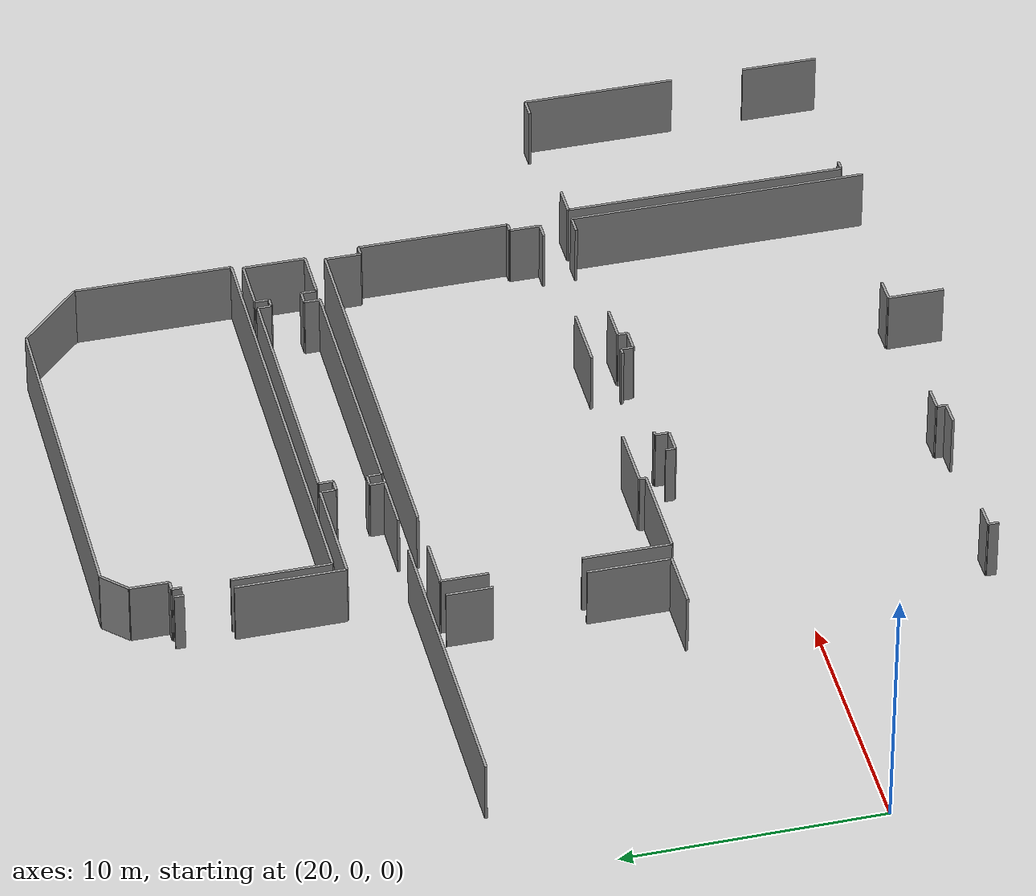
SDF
<sdf version="1.6">
 <world name="default">
  <model name="ground_plane">
   <static>1</static>
   <link name="link">
    <collision name="collision">
     <geometry><plane><normal>0 0 1</normal><size>100 100</size></plane></geometry>
     <surface><friction><ode><mu>100</mu><mu2>50</mu2></ode></friction></surface>
    </collision>
    <visual name="visual">
     <cast_shadows>0</cast_shadows>
     <geometry><plane><normal>0 0 1</normal><size>100 100</size></plane></geometry>
     <material>
      <script><uri>file://media/materials/scripts/gazebo.material</uri><name>Gazebo/Grey</name></script>
     </material>
    </visual>
   </link>
  </model>
  <model name="0510035342_A_40_1_101">
   <static>1</static>
   <link name="Wall_303">
    <collision name="Wall_303_Collision">
     <geometry><box><size>0.375393680788 0.1 2.5</size></box></geometry>
     <pose>0.187696840394 0 1.25 0 0 0</pose>
    </collision>
    <visual name="Wall_303_Visual">
     <pose>0.187696840394 0 1.25 0 0 0</pose>
     <geometry><box><size>0.375393680788 0.1 2.5</size></box></geometry>
     <material>
      <script><uri>file://media/materials/scripts/gazebo.material</uri><name>Gazebo/Grey</name></script>
      <ambient>1 1 1 1</ambient>
     </material>
    </visual>
    <pose>150.323072234 -2.37808594941 0 0 0 -1.57079632679</pose>
   </link>
   <link name="Wall_304">
    <collision name="Wall_304_Collision">
     <geometry><box><size>4.19714517932 0.1 2.5</size></box></geometry>
     <pose>2.09857258966 0 1.25 0 0 0</pose>
    </collision>
    <visual name="Wall_304_Visual">
     <pose>2.09857258966 0 1.25 0 0 0</pose>
     <geometry><box><size>4.19714517932 0.1 2.5</size></box></geometry>
     <material>
      <script><uri>file://media/materials/scripts/gazebo.material</uri><name>Gazebo/Grey</name></script>
      <ambient>1 1 1 1</ambient>
     </material>
    </visual>
    <pose>150.323072234 -4.60784313725 0 0 0 -1.57079632679</pose>
   </link>
   <link name="Wall_305">
    <collision name="Wall_305_Collision">
     <geometry><box><size>4.4173524332 0.1 2.5</size></box></geometry>
     <pose>2.2086762166 0 1.25 0 0 0</pose>
    </collision>
    <visual name="Wall_305_Visual">
     <pose>2.2086762166 0 1.25 0 0 0</pose>
     <geometry><box><size>4.4173524332 0.1 2.5</size></box></geometry>
     <material>
      <script><uri>file://media/materials/scripts/gazebo.material</uri><name>Gazebo/Grey</name></script>
      <ambient>1 1 1 1</ambient>
     </material>
    </visual>
    <pose>150.323072234 -8.80498831657 0 0 0 0.0</pose>
   </link>
   <link name="Wall_306">
    <collision name="Wall_306_Collision">
     <geometry><box><size>0.596362897491 0.1 2.5</size></box></geometry>
     <pose>0.298181448745 0 1.25 0 0 0</pose>
    </collision>
    <visual name="Wall_306_Visual">
     <pose>0.298181448745 0 1.25 0 0 0</pose>
     <geometry><box><size>0.596362897491 0.1 2.5</size></box></geometry>
     <material>
      <script><uri>file://media/materials/scripts/gazebo.material</uri><name>Gazebo/Grey</name></script>
      <ambient>1 1 1 1</ambient>
     </material>
    </visual>
    <pose>154.740424667 -8.80498831657 0 0 0 -1.57079632679</pose>
   </link>
   <link name="Wall_307">
    <collision name="Wall_307_Collision">
     <geometry><box><size>0.485878289139 0.1 2.5</size></box></geometry>
     <pose>0.24293914457 0 1.25 0 0 0</pose>
    </collision>
    <visual name="Wall_307_Visual">
     <pose>0.24293914457 0 1.25 0 0 0</pose>
     <geometry><box><size>0.485878289139 0.1 2.5</size></box></geometry>
     <material>
      <script><uri>file://media/materials/scripts/gazebo.material</uri><name>Gazebo/Grey</name></script>
      <ambient>1 1 1 1</ambient>
     </material>
    </visual>
    <pose>154.740424667 -9.40135121406 0 0 0 0.0</pose>
   </link>
   <link name="Wall_308">
    <collision name="Wall_308_Collision">
     <geometry><box><size>0.55216905415 0.1 2.5</size></box></geometry>
     <pose>0.276084527075 0 1.25 0 0 0</pose>
    </collision>
    <visual name="Wall_308_Visual">
     <pose>0.276084527075 0 1.25 0 0 0</pose>
     <geometry><box><size>0.55216905415 0.1 2.5</size></box></geometry>
     <material>
      <script><uri>file://media/materials/scripts/gazebo.material</uri><name>Gazebo/Grey</name></script>
      <ambient>1 1 1 1</ambient>
     </material>
    </visual>
    <pose>155.226302956 -9.40135121406 0 0 0 1.57079632679</pose>
   </link>
   <link name="Wall_309">
    <collision name="Wall_309_Collision">
     <geometry><box><size>10.4612414914 0.1 2.5</size></box></geometry>
     <pose>5.23062074571 0 1.25 0 0 0</pose>
    </collision>
    <visual name="Wall_309_Visual">
     <pose>5.23062074571 0 1.25 0 0 0</pose>
     <geometry><box><size>10.4612414914 0.1 2.5</size></box></geometry>
     <material>
      <script><uri>file://media/materials/scripts/gazebo.material</uri><name>Gazebo/Grey</name></script>
      <ambient>1 1 1 1</ambient>
     </material>
    </visual>
    <pose>155.226302956 -8.84918215991 0 0 0 0.0</pose>
   </link>
   <link name="Wall_310">
    <collision name="Wall_310_Collision">
     <geometry><box><size>0.519150665448 0.1 2.5</size></box></geometry>
     <pose>0.259575332724 0 1.25 0 0 0</pose>
    </collision>
    <visual name="Wall_310_Visual">
     <pose>0.259575332724 0 1.25 0 0 0</pose>
     <geometry><box><size>0.519150665448 0.1 2.5</size></box></geometry>
     <material>
      <script><uri>file://media/materials/scripts/gazebo.material</uri><name>Gazebo/Grey</name></script>
      <ambient>1 1 1 1</ambient>
     </material>
    </visual>
    <pose>165.687544448 -8.84918215991 0 0 0 -1.57079632679</pose>
   </link>
   <link name="Wall_311">
    <collision name="Wall_311_Collision">
     <geometry><box><size>0.377425581632 0.1 2.5</size></box></geometry>
     <pose>0.188712790816 0 1.25 0 0 0</pose>
    </collision>
    <visual name="Wall_311_Visual">
     <pose>0.188712790816 0 1.25 0 0 0</pose>
     <geometry><box><size>0.377425581632 0.1 2.5</size></box></geometry>
     <material>
      <script><uri>file://media/materials/scripts/gazebo.material</uri><name>Gazebo/Grey</name></script>
      <ambient>1 1 1 1</ambient>
     </material>
    </visual>
    <pose>165.687544448 -9.36833282536 0 0 0 0.0</pose>
   </link>
   <link name="Wall_312">
    <collision name="Wall_312_Collision">
     <geometry><box><size>0.551661078939 0.1 2.5</size></box></geometry>
     <pose>0.27583053947 0 1.25 0 0 0</pose>
    </collision>
    <visual name="Wall_312_Visual">
     <pose>0.27583053947 0 1.25 0 0 0</pose>
     <geometry><box><size>0.551661078939 0.1 2.5</size></box></geometry>
     <material>
      <script><uri>file://media/materials/scripts/gazebo.material</uri><name>Gazebo/Grey</name></script>
      <ambient>1 1 1 1</ambient>
     </material>
    </visual>
    <pose>166.064970029 -9.36833282536 0 0 0 1.57079632679</pose>
   </link>
   <link name="Wall_313">
    <collision name="Wall_313_Collision">
     <geometry><box><size>2.0913339429 0.1 2.5</size></box></geometry>
     <pose>1.04566697145 0 1.25 0 0 0</pose>
    </collision>
    <visual name="Wall_313_Visual">
     <pose>1.04566697145 0 1.25 0 0 0</pose>
     <geometry><box><size>2.0913339429 0.1 2.5</size></box></geometry>
     <material>
      <script><uri>file://media/materials/scripts/gazebo.material</uri><name>Gazebo/Grey</name></script>
      <ambient>1 1 1 1</ambient>
     </material>
    </visual>
    <pose>166.064970029 -8.81667174642 0 0 0 0.0</pose>
   </link>
   <link name="Wall_314">
    <collision name="Wall_314_Collision">
     <geometry><box><size>2.4105963629 0.1 2.5</size></box></geometry>
     <pose>1.20529818145 0 1.25 0 0 0</pose>
    </collision>
    <visual name="Wall_314_Visual">
     <pose>1.20529818145 0 1.25 0 0 0</pose>
     <geometry><box><size>2.4105963629 0.1 2.5</size></box></geometry>
     <material>
      <script><uri>file://media/materials/scripts/gazebo.material</uri><name>Gazebo/Grey</name></script>
      <ambient>1 1 1 1</ambient>
     </material>
    </visual>
    <pose>168.156303972 -8.81667174642 0 0 0 -1.57079632679</pose>
   </link>
   <link name="Wall_315">
    <collision name="Wall_315_Collision">
     <geometry><box><size>1.98948491314 0.1 2.5</size></box></geometry>
     <pose>0.994742456568 0 1.25 0 0 0</pose>
    </collision>
    <visual name="Wall_315_Visual">
     <pose>0.994742456568 0 1.25 0 0 0</pose>
     <geometry><box><size>1.98948491314 0.1 2.5</size></box></geometry>
     <material>
      <script><uri>file://media/materials/scripts/gazebo.material</uri><name>Gazebo/Grey</name></script>
      <ambient>1 1 1 1</ambient>
     </material>
    </visual>
    <pose>168.156303972 -11.2272681093 0 0 0 3.14159265359</pose>
   </link>
   <link name="Wall_316">
    <collision name="Wall_316_Collision">
     <geometry><box><size>0.595346947069 0.1 2.5</size></box></geometry>
     <pose>0.297673473534 0 1.25 0 0 0</pose>
    </collision>
    <visual name="Wall_316_Visual">
     <pose>0.297673473534 0 1.25 0 0 0</pose>
     <geometry><box><size>0.595346947069 0.1 2.5</size></box></geometry>
     <material>
      <script><uri>file://media/materials/scripts/gazebo.material</uri><name>Gazebo/Grey</name></script>
      <ambient>1 1 1 1</ambient>
     </material>
    </visual>
    <pose>166.166819059 -11.2272681093 0 0 0 1.57079632679</pose>
   </link>
   <link name="Wall_317">
    <collision name="Wall_317_Collision">
     <geometry><box><size>0.551915066545 0.1 2.5</size></box></geometry>
     <pose>0.275957533272 0 1.25 0 0 0</pose>
    </collision>
    <visual name="Wall_317_Visual">
     <pose>0.275957533272 0 1.25 0 0 0</pose>
     <geometry><box><size>0.551915066545 0.1 2.5</size></box></geometry>
     <material>
      <script><uri>file://media/materials/scripts/gazebo.material</uri><name>Gazebo/Grey</name></script>
      <ambient>1 1 1 1</ambient>
     </material>
    </visual>
    <pose>166.166819059 -10.6319211622 0 0 0 3.14159265359</pose>
   </link>
   <link name="Wall_318">
    <collision name="Wall_318_Collision">
     <geometry><box><size>0.609824240577 0.1 2.5</size></box></geometry>
     <pose>0.304912120289 0 1.25 0 0 0</pose>
    </collision>
    <visual name="Wall_318_Visual">
     <pose>0.304912120289 0 1.25 0 0 0</pose>
     <geometry><box><size>0.609824240577 0.1 2.5</size></box></geometry>
     <material>
      <script><uri>file://media/materials/scripts/gazebo.material</uri><name>Gazebo/Grey</name></script>
      <ambient>1 1 1 1</ambient>
     </material>
    </visual>
    <pose>165.614903993 -10.6319211622 0 0 0 -1.57079632679</pose>
   </link>
   <link name="Wall_319">
    <collision name="Wall_319_Collision">
     <geometry><box><size>10.3977445901 0.1 2.5</size></box></geometry>
     <pose>5.19887229503 0 1.25 0 0 0</pose>
    </collision>
    <visual name="Wall_319_Visual">
     <pose>5.19887229503 0 1.25 0 0 0</pose>
     <geometry><box><size>10.3977445901 0.1 2.5</size></box></geometry>
     <material>
      <script><uri>file://media/materials/scripts/gazebo.material</uri><name>Gazebo/Grey</name></script>
      <ambient>1 1 1 1</ambient>
     </material>
    </visual>
    <pose>165.614903993 -11.2417454028 0 0 0 3.14159265359</pose>
   </link>
   <link name="Wall_320">
    <collision name="Wall_320_Collision">
     <geometry><box><size>0.566392360053 0.1 2.5</size></box></geometry>
     <pose>0.283196180026 0 1.25 0 0 0</pose>
    </collision>
    <visual name="Wall_320_Visual">
     <pose>0.283196180026 0 1.25 0 0 0</pose>
     <geometry><box><size>0.566392360053 0.1 2.5</size></box></geometry>
     <material>
      <script><uri>file://media/materials/scripts/gazebo.material</uri><name>Gazebo/Grey</name></script>
      <ambient>1 1 1 1</ambient>
     </material>
    </visual>
    <pose>155.217159403 -11.2417454028 0 0 0 1.57079632679</pose>
   </link>
   <link name="Wall_321">
    <collision name="Wall_321_Collision">
     <geometry><box><size>0.493751904907 0.1 2.5</size></box></geometry>
     <pose>0.246875952454 0 1.25 0 0 0</pose>
    </collision>
    <visual name="Wall_321_Visual">
     <pose>0.246875952454 0 1.25 0 0 0</pose>
     <geometry><box><size>0.493751904907 0.1 2.5</size></box></geometry>
     <material>
      <script><uri>file://media/materials/scripts/gazebo.material</uri><name>Gazebo/Grey</name></script>
      <ambient>1 1 1 1</ambient>
     </material>
    </visual>
    <pose>155.217159403 -10.6753530428 0 0 0 3.14159265359</pose>
   </link>
   <link name="Wall_322">
    <collision name="Wall_322_Collision">
     <geometry><box><size>0.566392360053 0.1 2.5</size></box></geometry>
     <pose>0.283196180026 0 1.25 0 0 0</pose>
    </collision>
    <visual name="Wall_322_Visual">
     <pose>0.283196180026 0 1.25 0 0 0</pose>
     <geometry><box><size>0.566392360053 0.1 2.5</size></box></geometry>
     <material>
      <script><uri>file://media/materials/scripts/gazebo.material</uri><name>Gazebo/Grey</name></script>
      <ambient>1 1 1 1</ambient>
     </material>
    </visual>
    <pose>154.723407498 -10.6753530428 0 0 0 -1.57079632679</pose>
   </link>
   <link name="Wall_323">
    <collision name="Wall_323_Collision">
     <geometry><box><size>2.19267499746 0.1 2.5</size></box></geometry>
     <pose>1.09633749873 0 1.25 0 0 0</pose>
    </collision>
    <visual name="Wall_323_Visual">
     <pose>1.09633749873 0 1.25 0 0 0</pose>
     <geometry><box><size>2.19267499746 0.1 2.5</size></box></geometry>
     <material>
      <script><uri>file://media/materials/scripts/gazebo.material</uri><name>Gazebo/Grey</name></script>
      <ambient>1 1 1 1</ambient>
     </material>
    </visual>
    <pose>154.723407498 -11.2417454028 0 0 0 3.14159265359</pose>
   </link>
   <link name="Wall_324">
    <collision name="Wall_324_Collision">
     <geometry><box><size>11.9704358427 0.1 2.5</size></box></geometry>
     <pose>5.98521792137 0 1.25 0 0 0</pose>
    </collision>
    <visual name="Wall_324_Visual">
     <pose>5.98521792137 0 1.25 0 0 0</pose>
     <geometry><box><size>11.9704358427 0.1 2.5</size></box></geometry>
     <material>
      <script><uri>file://media/materials/scripts/gazebo.material</uri><name>Gazebo/Grey</name></script>
      <ambient>1 1 1 1</ambient>
     </material>
    </visual>
    <pose>150.831047445 -11.2417454028 0 0 0 3.14159265359</pose>
   </link>
   <link name="Wall_330">
    <collision name="Wall_330_Collision">
     <geometry><box><size>3.80244844052 0.1 2.5</size></box></geometry>
     <pose>1.90122422026 0 1.25 0 0 0</pose>
    </collision>
    <visual name="Wall_330_Visual">
     <pose>1.90122422026 0 1.25 0 0 0</pose>
     <geometry><box><size>3.80244844052 0.1 2.5</size></box></geometry>
     <material>
      <script><uri>file://media/materials/scripts/gazebo.material</uri><name>Gazebo/Grey</name></script>
      <ambient>1 1 1 1</ambient>
     </material>
    </visual>
    <pose>150.754343188 -8.37193944935 0 0 0 1.57079632679</pose>
   </link>
   <link name="Wall_331">
    <collision name="Wall_331_Collision">
     <geometry><box><size>0.378949507264 0.1 2.5</size></box></geometry>
     <pose>0.189474753632 0 1.25 0 0 0</pose>
    </collision>
    <visual name="Wall_331_Visual">
     <pose>0.189474753632 0 1.25 0 0 0</pose>
     <geometry><box><size>0.378949507264 0.1 2.5</size></box></geometry>
     <material>
      <script><uri>file://media/materials/scripts/gazebo.material</uri><name>Gazebo/Grey</name></script>
      <ambient>1 1 1 1</ambient>
     </material>
    </visual>
    <pose>150.754343188 -2.76541704765 0 0 0 1.57079632679</pose>
   </link>
   <link name="Wall_332">
    <collision name="Wall_332_Collision">
     <geometry><box><size>0.405618205832 0.1 2.5</size></box></geometry>
     <pose>0.202809102916 0 1.25 0 0 0</pose>
    </collision>
    <visual name="Wall_332_Visual">
     <pose>0.202809102916 0 1.25 0 0 0</pose>
     <geometry><box><size>0.405618205832 0.1 2.5</size></box></geometry>
     <material>
      <script><uri>file://media/materials/scripts/gazebo.material</uri><name>Gazebo/Grey</name></script>
      <ambient>1 1 1 1</ambient>
     </material>
    </visual>
    <pose>150.754343188 -2.38646754038 0 0 0 0.0</pose>
   </link>
   <link name="Wall_333">
    <collision name="Wall_333_Collision">
     <geometry><box><size>1.4898912933 0.1 2.5</size></box></geometry>
     <pose>0.744945646652 0 1.25 0 0 0</pose>
    </collision>
    <visual name="Wall_333_Visual">
     <pose>0.744945646652 0 1.25 0 0 0</pose>
     <geometry><box><size>1.4898912933 0.1 2.5</size></box></geometry>
     <material>
      <script><uri>file://media/materials/scripts/gazebo.material</uri><name>Gazebo/Grey</name></script>
      <ambient>1 1 1 1</ambient>
     </material>
    </visual>
    <pose>151.159961394 -2.38646754038 0 0 0 1.57079632679</pose>
   </link>
   <link name="Wall_334">
    <collision name="Wall_334_Collision">
     <geometry><box><size>1.26795028832 0.1 2.5</size></box></geometry>
     <pose>0.63397514416 0 1.25 0 0 0</pose>
    </collision>
    <visual name="Wall_334_Visual">
     <pose>0.63397514416 0 1.25 0 0 0</pose>
     <geometry><box><size>1.26795028832 0.1 2.5</size></box></geometry>
     <material>
      <script><uri>file://media/materials/scripts/gazebo.material</uri><name>Gazebo/Grey</name></script>
      <ambient>1 1 1 1</ambient>
     </material>
    </visual>
    <pose>151.159961394 -0.896576247079 0 0 0 0.785398163397</pose>
   </link>
   <link name="Wall_335">
    <collision name="Wall_335_Collision">
     <geometry><box><size>13.9284262928 0.1 2.5</size></box></geometry>
     <pose>6.9642131464 0 1.25 0 0 0</pose>
    </collision>
    <visual name="Wall_335_Visual">
     <pose>6.9642131464 0 1.25 0 0 0</pose>
     <geometry><box><size>13.9284262928 0.1 2.5</size></box></geometry>
     <material>
      <script><uri>file://media/materials/scripts/gazebo.material</uri><name>Gazebo/Grey</name></script>
      <ambient>1 1 1 1</ambient>
     </material>
    </visual>
    <pose>152.056537641 -0.0 0 0 0 0.0</pose>
   </link>
   <link name="Wall_336">
    <collision name="Wall_336_Collision">
     <geometry><box><size>3.27692745404 0.1 2.5</size></box></geometry>
     <pose>1.63846372702 0 1.25 0 0 0</pose>
    </collision>
    <visual name="Wall_336_Visual">
     <pose>1.63846372702 0 1.25 0 0 0</pose>
     <geometry><box><size>3.27692745404 0.1 2.5</size></box></geometry>
     <material>
      <script><uri>file://media/materials/scripts/gazebo.material</uri><name>Gazebo/Grey</name></script>
      <ambient>1 1 1 1</ambient>
     </material>
    </visual>
    <pose>165.984963934 -0.0 0 0 0 -0.78265784361</pose>
   </link>
   <link name="Wall_337">
    <collision name="Wall_337_Collision">
     <geometry><box><size>6.08046327339 0.1 2.5</size></box></geometry>
     <pose>3.0402316367 0 1.25 0 0 0</pose>
    </collision>
    <visual name="Wall_337_Visual">
     <pose>3.0402316367 0 1.25 0 0 0</pose>
     <geometry><box><size>6.08046327339 0.1 2.5</size></box></geometry>
     <material>
      <script><uri>file://media/materials/scripts/gazebo.material</uri><name>Gazebo/Grey</name></script>
      <ambient>1 1 1 1</ambient>
     </material>
    </visual>
    <pose>168.308442548 -2.31077923397 0 0 0 -1.57079632679</pose>
   </link>
   <link name="Wall_338">
    <collision name="Wall_338_Collision">
     <geometry><box><size>17.5541099731 0.1 2.5</size></box></geometry>
     <pose>8.77705498654 0 1.25 0 0 0</pose>
    </collision>
    <visual name="Wall_338_Visual">
     <pose>8.77705498654 0 1.25 0 0 0</pose>
     <geometry><box><size>17.5541099731 0.1 2.5</size></box></geometry>
     <material>
      <script><uri>file://media/materials/scripts/gazebo.material</uri><name>Gazebo/Grey</name></script>
      <ambient>1 1 1 1</ambient>
     </material>
    </visual>
    <pose>168.308442548 -8.39124250737 0 0 0 3.14049302154</pose>
   </link>
   <link name="Wall_339">
    <collision name="Wall_339_Collision">
     <geometry><box><size>3.38590876765 0.1 2.5</size></box></geometry>
     <pose>1.69295438383 0 1.25 0 0 0</pose>
    </collision>
    <visual name="Wall_339_Visual">
     <pose>1.69295438383 0 1.25 0 0 0</pose>
     <geometry><box><size>3.38590876765 0.1 2.5</size></box></geometry>
     <material>
      <script><uri>file://media/materials/scripts/gazebo.material</uri><name>Gazebo/Grey</name></script>
      <ambient>1 1 1 1</ambient>
     </material>
    </visual>
    <pose>148.891344102 -20.6441125673 0 0 0 1.57079632679</pose>
   </link>
   <link name="Wall_340">
    <collision name="Wall_340_Collision">
     <geometry><box><size>1.8000101595 0.1 2.5</size></box></geometry>
     <pose>0.900005079752 0 1.25 0 0 0</pose>
    </collision>
    <visual name="Wall_340_Visual">
     <pose>0.900005079752 0 1.25 0 0 0</pose>
     <geometry><box><size>1.8000101595 0.1 2.5</size></box></geometry>
     <material>
      <script><uri>file://media/materials/scripts/gazebo.material</uri><name>Gazebo/Grey</name></script>
      <ambient>1 1 1 1</ambient>
     </material>
    </visual>
    <pose>148.891344102 -13.7679061262 0 0 0 1.57079632679</pose>
   </link>
   <link name="Wall_341">
    <collision name="Wall_341_Collision">
     <geometry><box><size>1.99837447933 0.1 2.5</size></box></geometry>
     <pose>0.999187239663 0 1.25 0 0 0</pose>
    </collision>
    <visual name="Wall_341_Visual">
     <pose>0.999187239663 0 1.25 0 0 0</pose>
     <geometry><box><size>1.99837447933 0.1 2.5</size></box></geometry>
     <material>
      <script><uri>file://media/materials/scripts/gazebo.material</uri><name>Gazebo/Grey</name></script>
      <ambient>1 1 1 1</ambient>
     </material>
    </visual>
    <pose>148.891344102 -11.9678959667 0 0 0 0.0</pose>
   </link>
   <link name="Wall_342">
    <collision name="Wall_342_Collision">
     <geometry><box><size>15.4160316977 0.1 2.5</size></box></geometry>
     <pose>7.70801584883 0 1.25 0 0 0</pose>
    </collision>
    <visual name="Wall_342_Visual">
     <pose>7.70801584883 0 1.25 0 0 0</pose>
     <geometry><box><size>15.4160316977 0.1 2.5</size></box></geometry>
     <material>
      <script><uri>file://media/materials/scripts/gazebo.material</uri><name>Gazebo/Grey</name></script>
      <ambient>1 1 1 1</ambient>
     </material>
    </visual>
    <pose>152.509651529 -11.9678959667 0 0 0 0.0</pose>
   </link>
   <link name="Wall_343">
    <collision name="Wall_343_Collision">
     <geometry><box><size>1.37813674693 0.1 2.5</size></box></geometry>
     <pose>0.689068373463 0 1.25 0 0 0</pose>
    </collision>
    <visual name="Wall_343_Visual">
     <pose>0.689068373463 0 1.25 0 0 0</pose>
     <geometry><box><size>1.37813674693 0.1 2.5</size></box></geometry>
     <material>
      <script><uri>file://media/materials/scripts/gazebo.material</uri><name>Gazebo/Grey</name></script>
      <ambient>1 1 1 1</ambient>
     </material>
    </visual>
    <pose>167.925683227 -11.9678959667 0 0 0 -1.57079632679</pose>
   </link>
   <link name="Wall_344">
    <collision name="Wall_344_Collision">
     <geometry><box><size>0.40130041654 0.1 2.5</size></box></geometry>
     <pose>0.20065020827 0 1.25 0 0 0</pose>
    </collision>
    <visual name="Wall_344_Visual">
     <pose>0.20065020827 0 1.25 0 0 0</pose>
     <geometry><box><size>0.40130041654 0.1 2.5</size></box></geometry>
     <material>
      <script><uri>file://media/materials/scripts/gazebo.material</uri><name>Gazebo/Grey</name></script>
      <ambient>1 1 1 1</ambient>
     </material>
    </visual>
    <pose>167.925683227 -13.3460327136 0 0 0 0.0</pose>
   </link>
   <link name="Wall_345">
    <collision name="Wall_345_Collision">
     <geometry><box><size>5.86609773443 0.1 2.5</size></box></geometry>
     <pose>2.93304886722 0 1.25 0 0 0</pose>
    </collision>
    <visual name="Wall_345_Visual">
     <pose>2.93304886722 0 1.25 0 0 0</pose>
     <geometry><box><size>5.86609773443 0.1 2.5</size></box></geometry>
     <material>
      <script><uri>file://media/materials/scripts/gazebo.material</uri><name>Gazebo/Grey</name></script>
      <ambient>1 1 1 1</ambient>
     </material>
    </visual>
    <pose>168.326983643 -13.3460327136 0 0 0 -1.57079632679</pose>
   </link>
   <link name="Wall_346">
    <collision name="Wall_346_Collision">
     <geometry><box><size>0.357360560805 0.1 2.5</size></box></geometry>
     <pose>0.178680280402 0 1.25 0 0 0</pose>
    </collision>
    <visual name="Wall_346_Visual">
     <pose>0.178680280402 0 1.25 0 0 0</pose>
     <geometry><box><size>0.357360560805 0.1 2.5</size></box></geometry>
     <material>
      <script><uri>file://media/materials/scripts/gazebo.material</uri><name>Gazebo/Grey</name></script>
      <ambient>1 1 1 1</ambient>
     </material>
    </visual>
    <pose>168.326983643 -19.212130448 0 0 0 3.14159265359</pose>
   </link>
   <link name="Wall_347">
    <collision name="Wall_347_Collision">
     <geometry><box><size>1.18561414203 0.1 2.5</size></box></geometry>
     <pose>0.592807071015 0 1.25 0 0 0</pose>
    </collision>
    <visual name="Wall_347_Visual">
     <pose>0.592807071015 0 1.25 0 0 0</pose>
     <geometry><box><size>1.18561414203 0.1 2.5</size></box></geometry>
     <material>
      <script><uri>file://media/materials/scripts/gazebo.material</uri><name>Gazebo/Grey</name></script>
      <ambient>1 1 1 1</ambient>
     </material>
    </visual>
    <pose>167.969623082 -19.212130448 0 0 0 -1.57079632679</pose>
   </link>
   <link name="Wall_348">
    <collision name="Wall_348_Collision">
     <geometry><box><size>0.61795184395 0.1 2.5</size></box></geometry>
     <pose>0.308975921975 0 1.25 0 0 0</pose>
    </collision>
    <visual name="Wall_348_Visual">
     <pose>0.308975921975 0 1.25 0 0 0</pose>
     <geometry><box><size>0.61795184395 0.1 2.5</size></box></geometry>
     <material>
      <script><uri>file://media/materials/scripts/gazebo.material</uri><name>Gazebo/Grey</name></script>
      <ambient>1 1 1 1</ambient>
     </material>
    </visual>
    <pose>167.969623082 -20.3977445901 0 0 0 3.14159265359</pose>
   </link>
   <link name="Wall_349">
    <collision name="Wall_349_Collision">
     <geometry><box><size>2.53530427715 0.1 2.5</size></box></geometry>
     <pose>1.26765213858 0 1.25 0 0 0</pose>
    </collision>
    <visual name="Wall_349_Visual">
     <pose>1.26765213858 0 1.25 0 0 0</pose>
     <geometry><box><size>2.53530427715 0.1 2.5</size></box></geometry>
     <material>
      <script><uri>file://media/materials/scripts/gazebo.material</uri><name>Gazebo/Grey</name></script>
      <ambient>1 1 1 1</ambient>
     </material>
    </visual>
    <pose>162.373514173 -20.3977445901 0 0 0 3.14159265359</pose>
   </link>
   <link name="Wall_350">
    <collision name="Wall_350_Collision">
     <geometry><box><size>2.48323681804 0.1 2.5</size></box></geometry>
     <pose>1.24161840902 0 1.25 0 0 0</pose>
    </collision>
    <visual name="Wall_350_Visual">
     <pose>1.24161840902 0 1.25 0 0 0</pose>
     <geometry><box><size>2.48323681804 0.1 2.5</size></box></geometry>
     <material>
      <script><uri>file://media/materials/scripts/gazebo.material</uri><name>Gazebo/Grey</name></script>
      <ambient>1 1 1 1</ambient>
     </material>
    </visual>
    <pose>155.173727522 -20.3977445901 0 0 0 3.14159265359</pose>
   </link>
   <link name="Wall_351">
    <collision name="Wall_351_Collision">
     <geometry><box><size>0.25424159301 0.1 2.5</size></box></geometry>
     <pose>0.127120796505 0 1.25 0 0 0</pose>
    </collision>
    <visual name="Wall_351_Visual">
     <pose>0.127120796505 0 1.25 0 0 0</pose>
     <geometry><box><size>0.25424159301 0.1 2.5</size></box></geometry>
     <material>
      <script><uri>file://media/materials/scripts/gazebo.material</uri><name>Gazebo/Grey</name></script>
      <ambient>1 1 1 1</ambient>
     </material>
    </visual>
    <pose>152.690490704 -20.3977445901 0 0 0 -1.57079632679</pose>
   </link>
   <link name="Wall_352">
    <collision name="Wall_352_Collision">
     <geometry><box><size>3.79915476055 0.1 2.5</size></box></geometry>
     <pose>1.89957738028 0 1.25 0 0 0</pose>
    </collision>
    <visual name="Wall_352_Visual">
     <pose>1.89957738028 0 1.25 0 0 0</pose>
     <geometry><box><size>3.79915476055 0.1 2.5</size></box></geometry>
     <material>
      <script><uri>file://media/materials/scripts/gazebo.material</uri><name>Gazebo/Grey</name></script>
      <ambient>1 1 1 1</ambient>
     </material>
    </visual>
    <pose>152.690490704 -20.6519861831 0 0 0 3.13952018698</pose>
   </link>
   <link name="Wall_355">
    <collision name="Wall_355_Collision">
     <geometry><box><size>1.7715635477 0.1 2.5</size></box></geometry>
     <pose>0.885781773849 0 1.25 0 0 0</pose>
    </collision>
    <visual name="Wall_355_Visual">
     <pose>0.885781773849 0 1.25 0 0 0</pose>
     <geometry><box><size>1.7715635477 0.1 2.5</size></box></geometry>
     <material>
      <script><uri>file://media/materials/scripts/gazebo.material</uri><name>Gazebo/Grey</name></script>
      <ambient>1 1 1 1</ambient>
     </material>
    </visual>
    <pose>148.116173931 -11.9823732602 0 0 0 -1.57079632679</pose>
   </link>
   <link name="Wall_356">
    <collision name="Wall_356_Collision">
     <geometry><box><size>3.17916285685 0.1 2.5</size></box></geometry>
     <pose>1.58958142843 0 1.25 0 0 0</pose>
    </collision>
    <visual name="Wall_356_Visual">
     <pose>1.58958142843 0 1.25 0 0 0</pose>
     <geometry><box><size>3.17916285685 0.1 2.5</size></box></geometry>
     <material>
      <script><uri>file://media/materials/scripts/gazebo.material</uri><name>Gazebo/Grey</name></script>
      <ambient>1 1 1 1</ambient>
     </material>
    </visual>
    <pose>148.116173931 -17.2536320228 0 0 0 -1.57079632679</pose>
   </link>
   <link name="Wall_357">
    <collision name="Wall_357_Collision">
     <geometry><box><size>2.3168749365 0.1 2.5</size></box></geometry>
     <pose>1.15843746825 0 1.25 0 0 0</pose>
    </collision>
    <visual name="Wall_357_Visual">
     <pose>1.15843746825 0 1.25 0 0 0</pose>
     <geometry><box><size>2.3168749365 0.1 2.5</size></box></geometry>
     <material>
      <script><uri>file://media/materials/scripts/gazebo.material</uri><name>Gazebo/Grey</name></script>
      <ambient>1 1 1 1</ambient>
     </material>
    </visual>
    <pose>148.116173931 -20.4327948796 0 0 0 3.14159265359</pose>
   </link>
   <link name="Wall_364">
    <collision name="Wall_364_Collision">
     <geometry><box><size>0.375393680788 0.1 2.5</size></box></geometry>
     <pose>0.187696840394 0 1.25 0 0 0</pose>
    </collision>
    <visual name="Wall_364_Visual">
     <pose>0.187696840394 0 1.25 0 0 0</pose>
     <geometry><box><size>0.375393680788 0.1 2.5</size></box></geometry>
     <material>
      <script><uri>file://media/materials/scripts/gazebo.material</uri><name>Gazebo/Grey</name></script>
      <ambient>1 1 1 1</ambient>
     </material>
    </visual>
    <pose>154.055674083 -21.7474347252 0 0 0 -1.57079632679</pose>
   </link>
   <link name="Wall_365">
    <collision name="Wall_365_Collision">
     <geometry><box><size>0.927562734939 0.1 2.5</size></box></geometry>
     <pose>0.463781367469 0 1.25 0 0 0</pose>
    </collision>
    <visual name="Wall_365_Visual">
     <pose>0.463781367469 0 1.25 0 0 0</pose>
     <geometry><box><size>0.927562734939 0.1 2.5</size></box></geometry>
     <material>
      <script><uri>file://media/materials/scripts/gazebo.material</uri><name>Gazebo/Grey</name></script>
      <ambient>1 1 1 1</ambient>
     </material>
    </visual>
    <pose>154.055674083 -22.122828406 0 0 0 0.0</pose>
   </link>
   <link name="Wall_366">
    <collision name="Wall_366_Collision">
     <geometry><box><size>0.53007213248 0.1 2.5</size></box></geometry>
     <pose>0.26503606624 0 1.25 0 0 0</pose>
    </collision>
    <visual name="Wall_366_Visual">
     <pose>0.26503606624 0 1.25 0 0 0</pose>
     <geometry><box><size>0.53007213248 0.1 2.5</size></box></geometry>
     <material>
      <script><uri>file://media/materials/scripts/gazebo.material</uri><name>Gazebo/Grey</name></script>
      <ambient>1 1 1 1</ambient>
     </material>
    </visual>
    <pose>154.983236818 -22.122828406 0 0 0 1.57079632679</pose>
   </link>
   <link name="Wall_367">
    <collision name="Wall_367_Collision">
     <geometry><box><size>0.176775373362 0.1 2.5</size></box></geometry>
     <pose>0.0883876866809 0 1.25 0 0 0</pose>
    </collision>
    <visual name="Wall_367_Visual">
     <pose>0.0883876866809 0 1.25 0 0 0</pose>
     <geometry><box><size>0.176775373362 0.1 2.5</size></box></geometry>
     <material>
      <script><uri>file://media/materials/scripts/gazebo.material</uri><name>Gazebo/Grey</name></script>
      <ambient>1 1 1 1</ambient>
     </material>
    </visual>
    <pose>154.983236818 -21.5927562735 0 0 0 0.0</pose>
   </link>
   <link name="Wall_368">
    <collision name="Wall_368_Collision">
     <geometry><box><size>0.261353245962 0.1 2.5</size></box></geometry>
     <pose>0.130676622981 0 1.25 0 0 0</pose>
    </collision>
    <visual name="Wall_368_Visual">
     <pose>0.130676622981 0 1.25 0 0 0</pose>
     <geometry><box><size>0.261353245962 0.1 2.5</size></box></geometry>
     <material>
      <script><uri>file://media/materials/scripts/gazebo.material</uri><name>Gazebo/Grey</name></script>
      <ambient>1 1 1 1</ambient>
     </material>
    </visual>
    <pose>159.835162044 -21.5927562735 0 0 0 0.0</pose>
   </link>
   <link name="Wall_369">
    <collision name="Wall_369_Collision">
     <geometry><box><size>0.467845169156 0.1 2.5</size></box></geometry>
     <pose>0.233922584578 0 1.25 0 0 0</pose>
    </collision>
    <visual name="Wall_369_Visual">
     <pose>0.233922584578 0 1.25 0 0 0</pose>
     <geometry><box><size>0.467845169156 0.1 2.5</size></box></geometry>
     <material>
      <script><uri>file://media/materials/scripts/gazebo.material</uri><name>Gazebo/Grey</name></script>
      <ambient>1 1 1 1</ambient>
     </material>
    </visual>
    <pose>160.09651529 -21.5927562735 0 0 0 -1.57079632679</pose>
   </link>
   <link name="Wall_370">
    <collision name="Wall_370_Collision">
     <geometry><box><size>0.856954180636 0.1 2.5</size></box></geometry>
     <pose>0.428477090318 0 1.25 0 0 0</pose>
    </collision>
    <visual name="Wall_370_Visual">
     <pose>0.428477090318 0 1.25 0 0 0</pose>
     <geometry><box><size>0.856954180636 0.1 2.5</size></box></geometry>
     <material>
      <script><uri>file://media/materials/scripts/gazebo.material</uri><name>Gazebo/Grey</name></script>
      <ambient>1 1 1 1</ambient>
     </material>
    </visual>
    <pose>160.09651529 -22.0606014426 0 0 0 0.0</pose>
   </link>
   <link name="Wall_371">
    <collision name="Wall_371_Collision">
     <geometry><box><size>0.377679569237 0.1 2.5</size></box></geometry>
     <pose>0.188839784619 0 1.25 0 0 0</pose>
    </collision>
    <visual name="Wall_371_Visual">
     <pose>0.188839784619 0 1.25 0 0 0</pose>
     <geometry><box><size>0.377679569237 0.1 2.5</size></box></geometry>
     <material>
      <script><uri>file://media/materials/scripts/gazebo.material</uri><name>Gazebo/Grey</name></script>
      <ambient>1 1 1 1</ambient>
     </material>
    </visual>
    <pose>160.953469471 -22.0606014426 0 0 0 1.57079632679</pose>
   </link>
   <link name="Wall_372">
    <collision name="Wall_372_Collision">
     <geometry><box><size>1.40861525958 0.1 2.5</size></box></geometry>
     <pose>0.704307629788 0 1.25 0 0 0</pose>
    </collision>
    <visual name="Wall_372_Visual">
     <pose>0.704307629788 0 1.25 0 0 0</pose>
     <geometry><box><size>1.40861525958 0.1 2.5</size></box></geometry>
     <material>
      <script><uri>file://media/materials/scripts/gazebo.material</uri><name>Gazebo/Grey</name></script>
      <ambient>1 1 1 1</ambient>
     </material>
    </visual>
    <pose>160.953469471 -21.6829218734 0 0 0 0.0</pose>
   </link>
   <link name="Wall_373">
    <collision name="Wall_373_Collision">
     <geometry><box><size>0.732246266382 0.1 2.5</size></box></geometry>
     <pose>0.366123133191 0 1.25 0 0 0</pose>
    </collision>
    <visual name="Wall_373_Visual">
     <pose>0.366123133191 0 1.25 0 0 0</pose>
     <geometry><box><size>0.732246266382 0.1 2.5</size></box></geometry>
     <material>
      <script><uri>file://media/materials/scripts/gazebo.material</uri><name>Gazebo/Grey</name></script>
      <ambient>1 1 1 1</ambient>
     </material>
    </visual>
    <pose>167.374022148 -21.6829218734 0 0 0 0.0</pose>
   </link>
   <link name="Wall_374">
    <collision name="Wall_374_Collision">
     <geometry><box><size>11.5739611907 0.1 2.5</size></box></geometry>
     <pose>5.78698059535 0 1.25 0 0 0</pose>
    </collision>
    <visual name="Wall_374_Visual">
     <pose>5.78698059535 0 1.25 0 0 0</pose>
     <geometry><box><size>11.5739611907 0.1 2.5</size></box></geometry>
     <material>
      <script><uri>file://media/materials/scripts/gazebo.material</uri><name>Gazebo/Grey</name></script>
      <ambient>1 1 1 1</ambient>
     </material>
    </visual>
    <pose>168.106268414 -21.6829218734 0 0 0 -1.57079632679</pose>
   </link>
   <link name="Wall_377">
    <collision name="Wall_377_Collision">
     <geometry><box><size>0.958549222798 0.1 2.5</size></box></geometry>
     <pose>0.479274611399 0 1.25 0 0 0</pose>
    </collision>
    <visual name="Wall_377_Visual">
     <pose>0.479274611399 0 1.25 0 0 0</pose>
     <geometry><box><size>0.958549222798 0.1 2.5</size></box></geometry>
     <material>
      <script><uri>file://media/materials/scripts/gazebo.material</uri><name>Gazebo/Grey</name></script>
      <ambient>1 1 1 1</ambient>
     </material>
    </visual>
    <pose>161.606979579 -32.1822615056 0 0 0 3.14159265359</pose>
   </link>
   <link name="Wall_378">
    <collision name="Wall_378_Collision">
     <geometry><box><size>2.16499034847 0.1 2.5</size></box></geometry>
     <pose>1.08249517424 0 1.25 0 0 0</pose>
    </collision>
    <visual name="Wall_378_Visual">
     <pose>1.08249517424 0 1.25 0 0 0</pose>
     <geometry><box><size>2.16499034847 0.1 2.5</size></box></geometry>
     <material>
      <script><uri>file://media/materials/scripts/gazebo.material</uri><name>Gazebo/Grey</name></script>
      <ambient>1 1 1 1</ambient>
     </material>
    </visual>
    <pose>160.648430357 -32.1822615056 0 0 0 -1.57079632679</pose>
   </link>
   <link name="Wall_386">
    <collision name="Wall_386_Collision">
     <geometry><box><size>0.942294016052 0.1 2.5</size></box></geometry>
     <pose>0.471147008026 0 1.25 0 0 0</pose>
    </collision>
    <visual name="Wall_386_Visual">
     <pose>0.471147008026 0 1.25 0 0 0</pose>
     <geometry><box><size>0.942294016052 0.1 2.5</size></box></geometry>
     <material>
      <script><uri>file://media/materials/scripts/gazebo.material</uri><name>Gazebo/Grey</name></script>
      <ambient>1 1 1 1</ambient>
     </material>
    </visual>
    <pose>155.026922686 -32.1967387991 0 0 0 3.14159265359</pose>
   </link>
   <link name="Wall_387">
    <collision name="Wall_387_Collision">
     <geometry><box><size>0.362948288124 0.1 2.5</size></box></geometry>
     <pose>0.181474144062 0 1.25 0 0 0</pose>
    </collision>
    <visual name="Wall_387_Visual">
     <pose>0.181474144062 0 1.25 0 0 0</pose>
     <geometry><box><size>0.362948288124 0.1 2.5</size></box></geometry>
     <material>
      <script><uri>file://media/materials/scripts/gazebo.material</uri><name>Gazebo/Grey</name></script>
      <ambient>1 1 1 1</ambient>
     </material>
    </visual>
    <pose>154.08462867 -32.1967387991 0 0 0 -1.57079632679</pose>
   </link>
   <link name="Wall_388">
    <collision name="Wall_388_Collision">
     <geometry><box><size>0.94407192929 0.1 2.5</size></box></geometry>
     <pose>0.472035964645 0 1.25 0 0 0</pose>
    </collision>
    <visual name="Wall_388_Visual">
     <pose>0.472035964645 0 1.25 0 0 0</pose>
     <geometry><box><size>0.94407192929 0.1 2.5</size></box></geometry>
     <material>
      <script><uri>file://media/materials/scripts/gazebo.material</uri><name>Gazebo/Grey</name></script>
      <ambient>1 1 1 1</ambient>
     </material>
    </visual>
    <pose>154.08462867 -32.5596870873 0 0 0 3.14159265359</pose>
   </link>
   <link name="Wall_391">
    <collision name="Wall_391_Collision">
     <geometry><box><size>0.889464594128 0.1 2.5</size></box></geometry>
     <pose>0.444732297064 0 1.25 0 0 0</pose>
    </collision>
    <visual name="Wall_391_Visual">
     <pose>0.444732297064 0 1.25 0 0 0</pose>
     <geometry><box><size>0.889464594128 0.1 2.5</size></box></geometry>
     <material>
      <script><uri>file://media/materials/scripts/gazebo.material</uri><name>Gazebo/Grey</name></script>
      <ambient>1 1 1 1</ambient>
     </material>
    </visual>
    <pose>148.11515798 -32.1921670222 0 0 0 3.14159265359</pose>
   </link>
   <link name="Wall_392">
    <collision name="Wall_392_Collision">
     <geometry><box><size>0.384537234583 0.1 2.5</size></box></geometry>
     <pose>0.192268617291 0 1.25 0 0 0</pose>
    </collision>
    <visual name="Wall_392_Visual">
     <pose>0.192268617291 0 1.25 0 0 0</pose>
     <geometry><box><size>0.384537234583 0.1 2.5</size></box></geometry>
     <material>
      <script><uri>file://media/materials/scripts/gazebo.material</uri><name>Gazebo/Grey</name></script>
      <ambient>1 1 1 1</ambient>
     </material>
    </visual>
    <pose>147.225693386 -32.1921670222 0 0 0 -1.57079632679</pose>
   </link>
   <link name="Wall_522">
    <collision name="Wall_522_Collision">
     <geometry><box><size>0.41730163568 0.1 2.5</size></box></geometry>
     <pose>0.20865081784 0 1.25 0 0 0</pose>
    </collision>
    <visual name="Wall_522_Visual">
     <pose>0.20865081784 0 1.25 0 0 0</pose>
     <geometry><box><size>0.41730163568 0.1 2.5</size></box></geometry>
     <material>
      <script><uri>file://media/materials/scripts/gazebo.material</uri><name>Gazebo/Grey</name></script>
      <ambient>1 1 1 1</ambient>
     </material>
    </visual>
    <pose>169.077009042 -32.5436858681 0 0 0 3.14159265359</pose>
   </link>
   <link name="Wall_523">
    <collision name="Wall_523_Collision">
     <geometry><box><size>10.862541908 0.1 2.5</size></box></geometry>
     <pose>5.43127095398 0 1.25 0 0 0</pose>
    </collision>
    <visual name="Wall_523_Visual">
     <pose>5.43127095398 0 1.25 0 0 0</pose>
     <geometry><box><size>10.862541908 0.1 2.5</size></box></geometry>
     <material>
      <script><uri>file://media/materials/scripts/gazebo.material</uri><name>Gazebo/Grey</name></script>
      <ambient>1 1 1 1</ambient>
     </material>
    </visual>
    <pose>168.659707406 -32.5436858681 0 0 0 1.57079632679</pose>
   </link>
   <link name="Wall_524">
    <collision name="Wall_524_Collision">
     <geometry><box><size>1.12618104237 0.1 2.5</size></box></geometry>
     <pose>0.563090521183 0 1.25 0 0 0</pose>
    </collision>
    <visual name="Wall_524_Visual">
     <pose>0.563090521183 0 1.25 0 0 0</pose>
     <geometry><box><size>1.12618104237 0.1 2.5</size></box></geometry>
     <material>
      <script><uri>file://media/materials/scripts/gazebo.material</uri><name>Gazebo/Grey</name></script>
      <ambient>1 1 1 1</ambient>
     </material>
    </visual>
    <pose>168.659707406 -21.6811439602 0 0 0 0.0</pose>
   </link>
   <link name="Wall_525">
    <collision name="Wall_525_Collision">
     <geometry><box><size>0.770344407193 0.1 2.5</size></box></geometry>
     <pose>0.385172203596 0 1.25 0 0 0</pose>
    </collision>
    <visual name="Wall_525_Visual">
     <pose>0.385172203596 0 1.25 0 0 0</pose>
     <geometry><box><size>0.770344407193 0.1 2.5</size></box></geometry>
     <material>
      <script><uri>file://media/materials/scripts/gazebo.material</uri><name>Gazebo/Grey</name></script>
      <ambient>1 1 1 1</ambient>
     </material>
    </visual>
    <pose>174.786396424 -21.6811439602 0 0 0 0.0</pose>
   </link>
   <link name="Wall_526">
    <collision name="Wall_526_Collision">
     <geometry><box><size>5.89606827187 0.1 2.5</size></box></geometry>
     <pose>2.94803413593 0 1.25 0 0 0</pose>
    </collision>
    <visual name="Wall_526_Visual">
     <pose>2.94803413593 0 1.25 0 0 0</pose>
     <geometry><box><size>5.89606827187 0.1 2.5</size></box></geometry>
     <material>
      <script><uri>file://media/materials/scripts/gazebo.material</uri><name>Gazebo/Grey</name></script>
      <ambient>1 1 1 1</ambient>
     </material>
    </visual>
    <pose>175.556740831 -21.6811439602 0 0 0 -1.57079632679</pose>
   </link>
   <link name="Wall_527">
    <collision name="Wall_527_Collision">
     <geometry><box><size>2.9559077517 0.1 2.5</size></box></geometry>
     <pose>1.47795387585 0 1.25 0 0 0</pose>
    </collision>
    <visual name="Wall_527_Visual">
     <pose>1.47795387585 0 1.25 0 0 0</pose>
     <geometry><box><size>2.9559077517 0.1 2.5</size></box></geometry>
     <material>
      <script><uri>file://media/materials/scripts/gazebo.material</uri><name>Gazebo/Grey</name></script>
      <ambient>1 1 1 1</ambient>
     </material>
    </visual>
    <pose>175.556740831 -30.4510819872 0 0 0 -1.57079632679</pose>
   </link>
   <pose>-115.7 25.291537133 0 0 0 0</pose>
  </model>
 </world>
</sdf>
